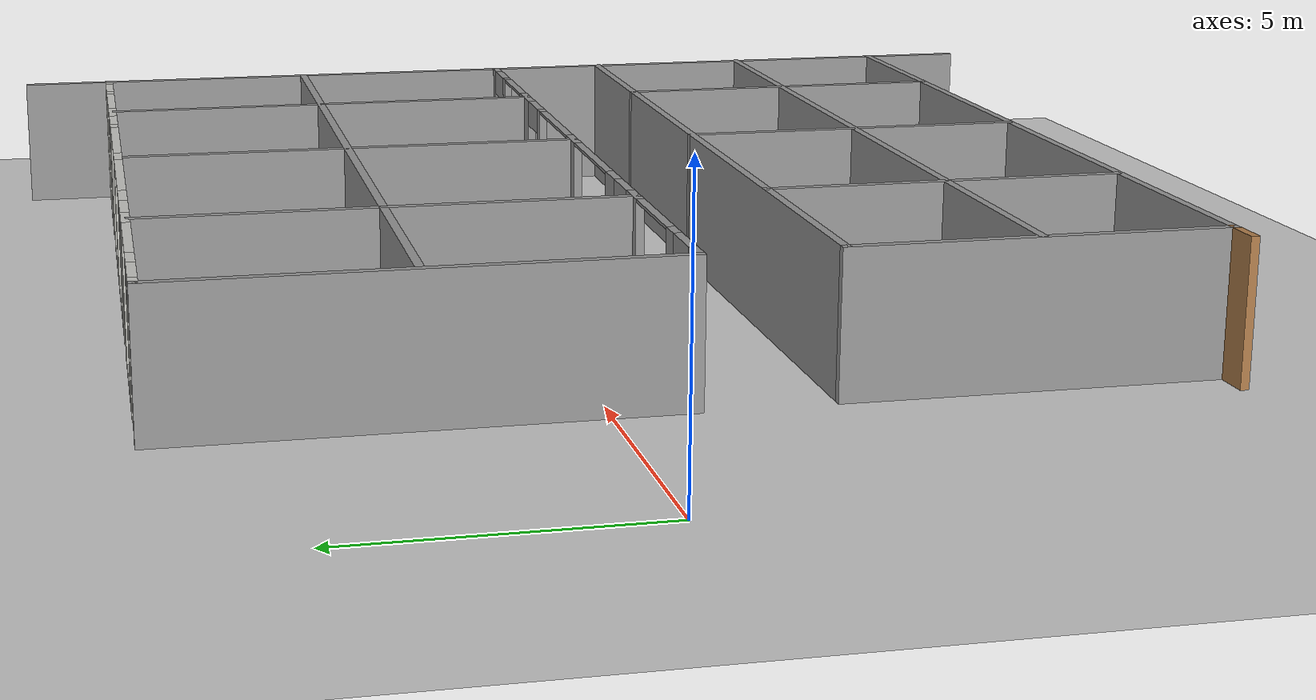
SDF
<sdf version="1.7">
 <world name="default">
  <model name="ground_plane">
   <static>1</static>
   <link name="link">
    <collision name="collision">
     <geometry><plane><normal>0 0 1</normal><size>100 100</size></plane></geometry>
     <surface>
      <contact><collide_bitmask>65535</collide_bitmask></contact>
      <friction><ode><mu>100</mu><mu2>50</mu2></ode></friction>
     </surface>
    </collision>
    <visual name="visual">
     <cast_shadows>0</cast_shadows>
     <geometry><plane><normal>0 0 1</normal><size>100 100</size></plane></geometry>
     <material>
      <script><uri>file://media/materials/scripts/gazebo.material</uri><name>Gazebo/Grey</name></script>
     </material>
    </visual>
   </link>
  </model>
  <model name="SLC_B1">
   <pose>1.2539 -1.59654 0 0 -0 0</pose>
   <link name="Wall_14">
    <pose>11.8092 8.67131 0 0 -0 3.14159</pose>
    <visual name="Wall_14_Visual_0">
     <pose>-8.41077 0 1.25 0 -0 0</pose>
     <geometry><box><size>0.42846 0.15 2.5</size></box></geometry>
     <material>
      <script><uri>file://media/materials/scripts/gazebo.material</uri><name>Gazebo/CeilingTiled</name></script>
      <ambient>0.533333 0.541176 0.521569 1</ambient>
     </material>
     <meta><layer>0</layer></meta>
    </visual>
    <collision name="Wall_14_Collision_0">
     <geometry><box><size>0.42846 0.15 2.5</size></box></geometry>
     <pose>-8.41077 0 1.25 0 -0 0</pose>
    </collision>
    <visual name="Wall_14_Visual_1">
     <pose>-7.17073 0 1.25 0 -0 0</pose>
     <geometry><box><size>0.25162 0.15 2.5</size></box></geometry>
     <material>
      <script><uri>file://media/materials/scripts/gazebo.material</uri><name>Gazebo/CeilingTiled</name></script>
      <ambient>0.533333 0.541176 0.521569 1</ambient>
     </material>
     <meta><layer>0</layer></meta>
    </visual>
    <collision name="Wall_14_Collision_1">
     <geometry><box><size>0.25162 0.15 2.5</size></box></geometry>
     <pose>-7.17073 0 1.25 0 -0 0</pose>
    </collision>
    <visual name="Wall_14_Visual_2">
     <pose>-3.47416 0 1.25 0 -0 0</pose>
     <geometry><box><size>0.289232 0.15 2.5</size></box></geometry>
     <material>
      <script><uri>file://media/materials/scripts/gazebo.material</uri><name>Gazebo/CeilingTiled</name></script>
      <ambient>0.533333 0.541176 0.521569 1</ambient>
     </material>
     <meta><layer>0</layer></meta>
    </visual>
    <collision name="Wall_14_Collision_2">
     <geometry><box><size>0.289232 0.15 2.5</size></box></geometry>
     <pose>-3.47416 0 1.25 0 -0 0</pose>
    </collision>
    <visual name="Wall_14_Visual_3">
     <pose>4.41694 0 1.25 0 -0 0</pose>
     <geometry><box><size>0.712712 0.15 2.5</size></box></geometry>
     <material>
      <script><uri>file://media/materials/scripts/gazebo.material</uri><name>Gazebo/CeilingTiled</name></script>
      <ambient>0.533333 0.541176 0.521569 1</ambient>
     </material>
     <meta><layer>0</layer></meta>
    </visual>
    <collision name="Wall_14_Collision_3">
     <geometry><box><size>0.712712 0.15 2.5</size></box></geometry>
     <pose>4.41694 0 1.25 0 -0 0</pose>
    </collision>
    <visual name="Wall_14_Visual_4">
     <pose>8.44768 0 1.25 0 -0 0</pose>
     <geometry><box><size>0.354641 0.15 2.5</size></box></geometry>
     <material>
      <script><uri>file://media/materials/scripts/gazebo.material</uri><name>Gazebo/CeilingTiled</name></script>
      <ambient>0.533333 0.541176 0.521569 1</ambient>
     </material>
     <meta><layer>0</layer></meta>
    </visual>
    <collision name="Wall_14_Collision_4">
     <geometry><box><size>0.354641 0.15 2.5</size></box></geometry>
     <pose>8.44768 0 1.25 0 -0 0</pose>
    </collision>
    <visual name="Wall_14_Visual_5">
     <pose>-5.78185 0 0.075 0 -0 0</pose>
     <geometry><box><size>2.52615 0.15 0.15</size></box></geometry>
     <material>
      <script><uri>file://media/materials/scripts/gazebo.material</uri><name>Gazebo/CeilingTiled</name></script>
      <ambient>0.533333 0.541176 0.521569 1</ambient>
     </material>
     <meta><layer>0</layer></meta>
    </visual>
    <collision name="Wall_14_Collision_5">
     <geometry><box><size>2.52615 0.15 0.15</size></box></geometry>
     <pose>-5.78185 0 0.075 0 -0 0</pose>
    </collision>
    <visual name="Wall_14_Visual_6">
     <pose>-0.084477 0 0.075 0 -0 0</pose>
     <geometry><box><size>6.49013 0.15 0.15</size></box></geometry>
     <material>
      <script><uri>file://media/materials/scripts/gazebo.material</uri><name>Gazebo/CeilingTiled</name></script>
      <ambient>0.533333 0.541176 0.521569 1</ambient>
     </material>
     <meta><layer>0</layer></meta>
    </visual>
    <collision name="Wall_14_Collision_6">
     <geometry><box><size>6.49013 0.15 0.15</size></box></geometry>
     <pose>-0.084477 0 0.075 0 -0 0</pose>
    </collision>
    <visual name="Wall_14_Visual_7">
     <pose>6.07183 0 0.075 0 -0 0</pose>
     <geometry><box><size>2.59706 0.15 0.15</size></box></geometry>
     <material>
      <script><uri>file://media/materials/scripts/gazebo.material</uri><name>Gazebo/CeilingTiled</name></script>
      <ambient>0.533333 0.541176 0.521569 1</ambient>
     </material>
     <meta><layer>0</layer></meta>
    </visual>
    <collision name="Wall_14_Collision_7">
     <geometry><box><size>2.59706 0.15 0.15</size></box></geometry>
     <pose>6.07183 0 0.075 0 -0 0</pose>
    </collision>
    <visual name="Wall_14_Visual_8">
     <pose>-4.95685 0 1.325 0 -0 0</pose>
     <geometry><box><size>0.876146 0.15 2.35</size></box></geometry>
     <material>
      <script><uri>file://media/materials/scripts/gazebo.material</uri><name>Gazebo/CeilingTiled</name></script>
      <ambient>0.533333 0.541176 0.521569 1</ambient>
     </material>
     <meta><layer>0</layer></meta>
    </visual>
    <collision name="Wall_14_Collision_8">
     <geometry><box><size>0.876146 0.15 2.35</size></box></geometry>
     <pose>-4.95685 0 1.325 0 -0 0</pose>
    </collision>
    <visual name="Wall_14_Visual_9">
     <pose>-4.95685 0 1.325 0 -0 0</pose>
     <geometry><box><size>0.876146 0.15 2.35</size></box></geometry>
     <material>
      <script><uri>file://media/materials/scripts/gazebo.material</uri><name>Gazebo/CeilingTiled</name></script>
      <ambient>0.533333 0.541176 0.521569 1</ambient>
     </material>
     <meta><layer>0</layer></meta>
    </visual>
    <collision name="Wall_14_Collision_9">
     <geometry><box><size>0.876146 0.15 2.35</size></box></geometry>
     <pose>-4.95685 0 1.325 0 -0 0</pose>
    </collision>
    <visual name="Wall_14_Visual_10">
     <pose>-0.525878 0 1.325 0 -0 0</pose>
     <geometry><box><size>0.607328 0.15 2.35</size></box></geometry>
     <material>
      <script><uri>file://media/materials/scripts/gazebo.material</uri><name>Gazebo/CeilingTiled</name></script>
      <ambient>0.533333 0.541176 0.521569 1</ambient>
     </material>
     <meta><layer>0</layer></meta>
    </visual>
    <collision name="Wall_14_Collision_10">
     <geometry><box><size>0.607328 0.15 2.35</size></box></geometry>
     <pose>-0.525878 0 1.325 0 -0 0</pose>
    </collision>
    <visual name="Wall_14_Visual_11">
     <pose>2.76919 0 1.325 0 -0 0</pose>
     <geometry><box><size>0.782801 0.15 2.35</size></box></geometry>
     <material>
      <script><uri>file://media/materials/scripts/gazebo.material</uri><name>Gazebo/CeilingTiled</name></script>
      <ambient>0.533333 0.541176 0.521569 1</ambient>
     </material>
     <meta><layer>0</layer></meta>
    </visual>
    <collision name="Wall_14_Collision_11">
     <geometry><box><size>0.782801 0.15 2.35</size></box></geometry>
     <pose>2.76919 0 1.325 0 -0 0</pose>
    </collision>
    <visual name="Wall_14_Visual_12">
     <pose>2.76919 0 1.325 0 -0 0</pose>
     <geometry><box><size>0.782801 0.15 2.35</size></box></geometry>
     <material>
      <script><uri>file://media/materials/scripts/gazebo.material</uri><name>Gazebo/CeilingTiled</name></script>
      <ambient>0.533333 0.541176 0.521569 1</ambient>
     </material>
     <meta><layer>0</layer></meta>
    </visual>
    <collision name="Wall_14_Collision_12">
     <geometry><box><size>0.782801 0.15 2.35</size></box></geometry>
     <pose>2.76919 0 1.325 0 -0 0</pose>
    </collision>
    <visual name="Wall_14_Visual_13">
     <pose>7.07183 0 1.325 0 -0 0</pose>
     <geometry><box><size>0.597059 0.15 2.35</size></box></geometry>
     <material>
      <script><uri>file://media/materials/scripts/gazebo.material</uri><name>Gazebo/CeilingTiled</name></script>
      <ambient>0.533333 0.541176 0.521569 1</ambient>
     </material>
     <meta><layer>0</layer></meta>
    </visual>
    <collision name="Wall_14_Collision_13">
     <geometry><box><size>0.597059 0.15 2.35</size></box></geometry>
     <pose>7.07183 0 1.325 0 -0 0</pose>
    </collision>
    <visual name="Wall_14_Visual_14">
     <pose>-7.74654 0 2.25 0 -0 0</pose>
     <geometry><box><size>0.9 0.15 0.5</size></box></geometry>
     <material>
      <script><uri>file://media/materials/scripts/gazebo.material</uri><name>Gazebo/CeilingTiled</name></script>
      <ambient>0.533333 0.541176 0.521569 1</ambient>
     </material>
     <meta><layer>0</layer></meta>
    </visual>
    <collision name="Wall_14_Collision_14">
     <geometry><box><size>0.9 0.15 0.5</size></box></geometry>
     <pose>-7.74654 0 2.25 0 -0 0</pose>
    </collision>
    <visual name="Wall_14_Visual_15">
     <pose>-4.06877 0 2.25 0 -0 0</pose>
     <geometry><box><size>0.9 0.15 0.5</size></box></geometry>
     <material>
      <script><uri>file://media/materials/scripts/gazebo.material</uri><name>Gazebo/CeilingTiled</name></script>
      <ambient>0.533333 0.541176 0.521569 1</ambient>
     </material>
     <meta><layer>0</layer></meta>
    </visual>
    <collision name="Wall_14_Collision_15">
     <geometry><box><size>0.9 0.15 0.5</size></box></geometry>
     <pose>-4.06877 0 2.25 0 -0 0</pose>
    </collision>
    <visual name="Wall_14_Visual_16">
     <pose>-4.06877 0 2.25 0 -0 0</pose>
     <geometry><box><size>0.9 0.15 0.5</size></box></geometry>
     <material>
      <script><uri>file://media/materials/scripts/gazebo.material</uri><name>Gazebo/CeilingTiled</name></script>
      <ambient>0.533333 0.541176 0.521569 1</ambient>
     </material>
     <meta><layer>0</layer></meta>
    </visual>
    <collision name="Wall_14_Collision_16">
     <geometry><box><size>0.9 0.15 0.5</size></box></geometry>
     <pose>-4.06877 0 2.25 0 -0 0</pose>
    </collision>
    <visual name="Wall_14_Visual_17">
     <pose>3.61059 0 2.25 0 -0 0</pose>
     <geometry><box><size>0.9 0.15 0.5</size></box></geometry>
     <material>
      <script><uri>file://media/materials/scripts/gazebo.material</uri><name>Gazebo/CeilingTiled</name></script>
      <ambient>0.533333 0.541176 0.521569 1</ambient>
     </material>
     <meta><layer>0</layer></meta>
    </visual>
    <collision name="Wall_14_Collision_17">
     <geometry><box><size>0.9 0.15 0.5</size></box></geometry>
     <pose>3.61059 0 2.25 0 -0 0</pose>
    </collision>
    <visual name="Wall_14_Visual_18">
     <pose>3.61059 0 2.25 0 -0 0</pose>
     <geometry><box><size>0.9 0.15 0.5</size></box></geometry>
     <material>
      <script><uri>file://media/materials/scripts/gazebo.material</uri><name>Gazebo/CeilingTiled</name></script>
      <ambient>0.533333 0.541176 0.521569 1</ambient>
     </material>
     <meta><layer>0</layer></meta>
    </visual>
    <collision name="Wall_14_Collision_18">
     <geometry><box><size>0.9 0.15 0.5</size></box></geometry>
     <pose>3.61059 0 2.25 0 -0 0</pose>
    </collision>
    <visual name="Wall_14_Visual_19">
     <pose>7.82036 0 2.25 0 -0 0</pose>
     <geometry><box><size>0.9 0.15 0.5</size></box></geometry>
     <material>
      <script><uri>file://media/materials/scripts/gazebo.material</uri><name>Gazebo/CeilingTiled</name></script>
      <ambient>0.533333 0.541176 0.521569 1</ambient>
     </material>
     <meta><layer>0</layer></meta>
    </visual>
    <collision name="Wall_14_Collision_19">
     <geometry><box><size>0.9 0.15 0.5</size></box></geometry>
     <pose>7.82036 0 2.25 0 -0 0</pose>
    </collision>
    <visual name="Wall_14_Visual_20">
     <pose>-6.21992 0 2.475 0 -0 0</pose>
     <geometry><box><size>1.65 0.15 0.05</size></box></geometry>
     <material>
      <script><uri>file://media/materials/scripts/gazebo.material</uri><name>Gazebo/CeilingTiled</name></script>
      <ambient>0.533333 0.541176 0.521569 1</ambient>
     </material>
     <meta><layer>0</layer></meta>
    </visual>
    <collision name="Wall_14_Collision_20">
     <geometry><box><size>1.65 0.15 0.05</size></box></geometry>
     <pose>-6.21992 0 2.475 0 -0 0</pose>
    </collision>
    <visual name="Wall_14_Visual_21">
     <pose>-2.07954 0 2.475 0 -0 0</pose>
     <geometry><box><size>2.5 0.15 0.05</size></box></geometry>
     <material>
      <script><uri>file://media/materials/scripts/gazebo.material</uri><name>Gazebo/CeilingTiled</name></script>
      <ambient>0.533333 0.541176 0.521569 1</ambient>
     </material>
     <meta><layer>0</layer></meta>
    </visual>
    <collision name="Wall_14_Collision_21">
     <geometry><box><size>2.5 0.15 0.05</size></box></geometry>
     <pose>-2.07954 0 2.475 0 -0 0</pose>
    </collision>
    <visual name="Wall_14_Visual_22">
     <pose>5.7733 0 2.475 0 -0 0</pose>
     <geometry><box><size>2 0.15 0.05</size></box></geometry>
     <material>
      <script><uri>file://media/materials/scripts/gazebo.material</uri><name>Gazebo/CeilingTiled</name></script>
      <ambient>0.533333 0.541176 0.521569 1</ambient>
     </material>
     <meta><layer>0</layer></meta>
    </visual>
    <collision name="Wall_14_Collision_22">
     <geometry><box><size>2 0.15 0.05</size></box></geometry>
     <pose>5.7733 0 2.475 0 -0 0</pose>
    </collision>
    <visual name="Wall_14_Visual_23">
     <pose>1.07779 0 2.475 0 -0 0</pose>
     <geometry><box><size>2.6 0.15 0.05</size></box></geometry>
     <material>
      <script><uri>file://media/materials/scripts/gazebo.material</uri><name>Gazebo/CeilingTiled</name></script>
      <ambient>0.533333 0.541176 0.521569 1</ambient>
     </material>
     <meta><layer>0</layer></meta>
    </visual>
    <collision name="Wall_14_Collision_23">
     <geometry><box><size>2.6 0.15 0.05</size></box></geometry>
     <pose>1.07779 0 2.475 0 -0 0</pose>
    </collision>
   </link>
   <link name="Wall_15">
    <collision name="Wall_15_Collision">
     <geometry><box><size>8.56942 0.15 2.5</size></box></geometry>
     <pose>0 0 1.25 0 -0 0</pose>
    </collision>
    <visual name="Wall_15_Visual">
     <pose>0 0 1.25 0 -0 0</pose>
     <geometry><box><size>8.56942 0.15 2.5</size></box></geometry>
     <material>
      <script><uri>file://media/materials/scripts/gazebo.material</uri><name>Gazebo/Grey</name></script>
      <ambient>0.533333 0.541176 0.521569 1</ambient>
     </material>
     <meta><layer>0</layer></meta>
    </visual>
    <pose>3.23606 4.46162 0 0 -0 -1.5708</pose>
   </link>
   <link name="Wall_16">
    <pose>11.7861 0.25192 0 0 -0 0</pose>
    <visual name="Wall_16_Visual_0">
     <pose>-8.35766 0 1.25 0 -0 0</pose>
     <geometry><box><size>0.534678 0.15 2.5</size></box></geometry>
     <material>
      <script><uri>file://media/materials/scripts/gazebo.material</uri><name>Gazebo/Grey</name></script>
      <ambient>0.533333 0.541176 0.521569 1</ambient>
     </material>
     <meta><layer>0</layer></meta>
    </visual>
    <collision name="Wall_16_Collision_0">
     <geometry><box><size>0.534678 0.15 2.5</size></box></geometry>
     <pose>-8.35766 0 1.25 0 -0 0</pose>
    </collision>
    <visual name="Wall_16_Visual_1">
     <pose>-6.97321 0 1.25 0 -0 0</pose>
     <geometry><box><size>0.434218 0.15 2.5</size></box></geometry>
     <material>
      <script><uri>file://media/materials/scripts/gazebo.material</uri><name>Gazebo/Grey</name></script>
      <ambient>0.533333 0.541176 0.521569 1</ambient>
     </material>
     <meta><layer>0</layer></meta>
    </visual>
    <collision name="Wall_16_Collision_1">
     <geometry><box><size>0.434218 0.15 2.5</size></box></geometry>
     <pose>-6.97321 0 1.25 0 -0 0</pose>
    </collision>
    <visual name="Wall_16_Visual_2">
     <pose>-2.81975 0 1.25 0 -0 0</pose>
     <geometry><box><size>0.645982 0.15 2.5</size></box></geometry>
     <material>
      <script><uri>file://media/materials/scripts/gazebo.material</uri><name>Gazebo/Grey</name></script>
      <ambient>0.533333 0.541176 0.521569 1</ambient>
     </material>
     <meta><layer>0</layer></meta>
    </visual>
    <collision name="Wall_16_Collision_2">
     <geometry><box><size>0.645982 0.15 2.5</size></box></geometry>
     <pose>-2.81975 0 1.25 0 -0 0</pose>
    </collision>
    <visual name="Wall_16_Visual_3">
     <pose>4.96072 0 1.25 0 -0 0</pose>
     <geometry><box><size>0.947074 0.15 2.5</size></box></geometry>
     <material>
      <script><uri>file://media/materials/scripts/gazebo.material</uri><name>Gazebo/Grey</name></script>
      <ambient>0.533333 0.541176 0.521569 1</ambient>
     </material>
     <meta><layer>0</layer></meta>
    </visual>
    <collision name="Wall_16_Collision_3">
     <geometry><box><size>0.947074 0.15 2.5</size></box></geometry>
     <pose>4.96072 0 1.25 0 -0 0</pose>
    </collision>
    <visual name="Wall_16_Visual_4">
     <pose>8.41705 0 1.25 0 -0 0</pose>
     <geometry><box><size>0.415906 0.15 2.5</size></box></geometry>
     <material>
      <script><uri>file://media/materials/scripts/gazebo.material</uri><name>Gazebo/Grey</name></script>
      <ambient>0.533333 0.541176 0.521569 1</ambient>
     </material>
     <meta><layer>0</layer></meta>
    </visual>
    <collision name="Wall_16_Collision_4">
     <geometry><box><size>0.415906 0.15 2.5</size></box></geometry>
     <pose>8.41705 0 1.25 0 -0 0</pose>
    </collision>
    <visual name="Wall_16_Visual_5">
     <pose>-5.39942 0 0.075 0 -0 0</pose>
     <geometry><box><size>2.71336 0.15 0.15</size></box></geometry>
     <material>
      <script><uri>file://media/materials/scripts/gazebo.material</uri><name>Gazebo/Grey</name></script>
      <ambient>0.533333 0.541176 0.521569 1</ambient>
     </material>
     <meta><layer>0</layer></meta>
    </visual>
    <collision name="Wall_16_Collision_5">
     <geometry><box><size>2.71336 0.15 0.15</size></box></geometry>
     <pose>-5.39942 0 0.075 0 -0 0</pose>
    </collision>
    <visual name="Wall_16_Visual_6">
     <pose>0.54521 0 0.075 0 -0 0</pose>
     <geometry><box><size>6.08394 0.15 0.15</size></box></geometry>
     <material>
      <script><uri>file://media/materials/scripts/gazebo.material</uri><name>Gazebo/Grey</name></script>
      <ambient>0.533333 0.541176 0.521569 1</ambient>
     </material>
     <meta><layer>0</layer></meta>
    </visual>
    <collision name="Wall_16_Collision_6">
     <geometry><box><size>6.08394 0.15 0.15</size></box></geometry>
     <pose>0.54521 0 0.075 0 -0 0</pose>
    </collision>
    <visual name="Wall_16_Visual_7">
     <pose>6.37167 0 0.075 0 -0 0</pose>
     <geometry><box><size>1.87484 0.15 0.15</size></box></geometry>
     <material>
      <script><uri>file://media/materials/scripts/gazebo.material</uri><name>Gazebo/Grey</name></script>
      <ambient>0.533333 0.541176 0.521569 1</ambient>
     </material>
     <meta><layer>0</layer></meta>
    </visual>
    <collision name="Wall_16_Collision_7">
     <geometry><box><size>1.87484 0.15 0.15</size></box></geometry>
     <pose>6.37167 0 0.075 0 -0 0</pose>
    </collision>
    <visual name="Wall_16_Visual_8">
     <pose>-4.39942 0 1.325 0 -0 0</pose>
     <geometry><box><size>0.713362 0.15 2.35</size></box></geometry>
     <material>
      <script><uri>file://media/materials/scripts/gazebo.material</uri><name>Gazebo/Grey</name></script>
      <ambient>0.533333 0.541176 0.521569 1</ambient>
     </material>
     <meta><layer>0</layer></meta>
    </visual>
    <collision name="Wall_16_Collision_8">
     <geometry><box><size>0.713362 0.15 2.35</size></box></geometry>
     <pose>-4.39942 0 1.325 0 -0 0</pose>
    </collision>
    <visual name="Wall_16_Visual_9">
     <pose>-4.39942 0 1.325 0 -0 0</pose>
     <geometry><box><size>0.713362 0.15 2.35</size></box></geometry>
     <material>
      <script><uri>file://media/materials/scripts/gazebo.material</uri><name>Gazebo/Grey</name></script>
      <ambient>0.533333 0.541176 0.521569 1</ambient>
     </material>
     <meta><layer>0</layer></meta>
    </visual>
    <collision name="Wall_16_Collision_9">
     <geometry><box><size>0.713362 0.15 2.35</size></box></geometry>
     <pose>-4.39942 0 1.325 0 -0 0</pose>
    </collision>
    <visual name="Wall_16_Visual_10">
     <pose>0.468208 0 1.325 0 -0 0</pose>
     <geometry><box><size>0.729936 0.15 2.35</size></box></geometry>
     <material>
      <script><uri>file://media/materials/scripts/gazebo.material</uri><name>Gazebo/Grey</name></script>
      <ambient>0.533333 0.541176 0.521569 1</ambient>
     </material>
     <meta><layer>0</layer></meta>
    </visual>
    <collision name="Wall_16_Collision_10">
     <geometry><box><size>0.729936 0.15 2.35</size></box></geometry>
     <pose>0.468208 0 1.325 0 -0 0</pose>
    </collision>
    <visual name="Wall_16_Visual_11">
     <pose>3.46018 0 1.325 0 -0 0</pose>
     <geometry><box><size>0.254004 0.15 2.35</size></box></geometry>
     <material>
      <script><uri>file://media/materials/scripts/gazebo.material</uri><name>Gazebo/Grey</name></script>
      <ambient>0.533333 0.541176 0.521569 1</ambient>
     </material>
     <meta><layer>0</layer></meta>
    </visual>
    <collision name="Wall_16_Collision_11">
     <geometry><box><size>0.254004 0.15 2.35</size></box></geometry>
     <pose>3.46018 0 1.325 0 -0 0</pose>
    </collision>
    <visual name="Wall_16_Visual_12">
     <pose>3.46018 0 1.325 0 -0 0</pose>
     <geometry><box><size>0.254004 0.15 2.35</size></box></geometry>
     <material>
      <script><uri>file://media/materials/scripts/gazebo.material</uri><name>Gazebo/Grey</name></script>
      <ambient>0.533333 0.541176 0.521569 1</ambient>
     </material>
     <meta><layer>0</layer></meta>
    </visual>
    <collision name="Wall_16_Collision_12">
     <geometry><box><size>0.254004 0.15 2.35</size></box></geometry>
     <pose>3.46018 0 1.325 0 -0 0</pose>
    </collision>
    <visual name="Wall_16_Visual_13">
     <pose>7.20017 0 1.325 0 -0 0</pose>
     <geometry><box><size>0.217839 0.15 2.35</size></box></geometry>
     <material>
      <script><uri>file://media/materials/scripts/gazebo.material</uri><name>Gazebo/Grey</name></script>
      <ambient>0.533333 0.541176 0.521569 1</ambient>
     </material>
     <meta><layer>0</layer></meta>
    </visual>
    <collision name="Wall_16_Collision_13">
     <geometry><box><size>0.217839 0.15 2.35</size></box></geometry>
     <pose>7.20017 0 1.325 0 -0 0</pose>
    </collision>
    <visual name="Wall_16_Visual_14">
     <pose>-7.64032 0 2.25 0 -0 0</pose>
     <geometry><box><size>0.9 0.15 0.5</size></box></geometry>
     <material>
      <script><uri>file://media/materials/scripts/gazebo.material</uri><name>Gazebo/Grey</name></script>
      <ambient>0.533333 0.541176 0.521569 1</ambient>
     </material>
     <meta><layer>0</layer></meta>
    </visual>
    <collision name="Wall_16_Collision_14">
     <geometry><box><size>0.9 0.15 0.5</size></box></geometry>
     <pose>-7.64032 0 2.25 0 -0 0</pose>
    </collision>
    <visual name="Wall_16_Visual_15">
     <pose>-3.59274 0 2.25 0 -0 0</pose>
     <geometry><box><size>0.9 0.15 0.5</size></box></geometry>
     <material>
      <script><uri>file://media/materials/scripts/gazebo.material</uri><name>Gazebo/Grey</name></script>
      <ambient>0.533333 0.541176 0.521569 1</ambient>
     </material>
     <meta><layer>0</layer></meta>
    </visual>
    <collision name="Wall_16_Collision_15">
     <geometry><box><size>0.9 0.15 0.5</size></box></geometry>
     <pose>-3.59274 0 2.25 0 -0 0</pose>
    </collision>
    <visual name="Wall_16_Visual_16">
     <pose>-3.59274 0 2.25 0 -0 0</pose>
     <geometry><box><size>0.9 0.15 0.5</size></box></geometry>
     <material>
      <script><uri>file://media/materials/scripts/gazebo.material</uri><name>Gazebo/Grey</name></script>
      <ambient>0.533333 0.541176 0.521569 1</ambient>
     </material>
     <meta><layer>0</layer></meta>
    </visual>
    <collision name="Wall_16_Collision_16">
     <geometry><box><size>0.9 0.15 0.5</size></box></geometry>
     <pose>-3.59274 0 2.25 0 -0 0</pose>
    </collision>
    <visual name="Wall_16_Visual_17">
     <pose>4.03718 0 2.25 0 -0 0</pose>
     <geometry><box><size>0.9 0.15 0.5</size></box></geometry>
     <material>
      <script><uri>file://media/materials/scripts/gazebo.material</uri><name>Gazebo/Grey</name></script>
      <ambient>0.533333 0.541176 0.521569 1</ambient>
     </material>
     <meta><layer>0</layer></meta>
    </visual>
    <collision name="Wall_16_Collision_17">
     <geometry><box><size>0.9 0.15 0.5</size></box></geometry>
     <pose>4.03718 0 2.25 0 -0 0</pose>
    </collision>
    <visual name="Wall_16_Visual_18">
     <pose>4.03718 0 2.25 0 -0 0</pose>
     <geometry><box><size>0.9 0.15 0.5</size></box></geometry>
     <material>
      <script><uri>file://media/materials/scripts/gazebo.material</uri><name>Gazebo/Grey</name></script>
      <ambient>0.533333 0.541176 0.521569 1</ambient>
     </material>
     <meta><layer>0</layer></meta>
    </visual>
    <collision name="Wall_16_Collision_18">
     <geometry><box><size>0.9 0.15 0.5</size></box></geometry>
     <pose>4.03718 0 2.25 0 -0 0</pose>
    </collision>
    <visual name="Wall_16_Visual_19">
     <pose>7.75909 0 2.25 0 -0 0</pose>
     <geometry><box><size>0.9 0.15 0.5</size></box></geometry>
     <material>
      <script><uri>file://media/materials/scripts/gazebo.material</uri><name>Gazebo/Grey</name></script>
      <ambient>0.533333 0.541176 0.521569 1</ambient>
     </material>
     <meta><layer>0</layer></meta>
    </visual>
    <collision name="Wall_16_Collision_19">
     <geometry><box><size>0.9 0.15 0.5</size></box></geometry>
     <pose>7.75909 0 2.25 0 -0 0</pose>
    </collision>
    <visual name="Wall_16_Visual_20">
     <pose>-5.7561 0 2.475 0 -0 0</pose>
     <geometry><box><size>2 0.15 0.05</size></box></geometry>
     <material>
      <script><uri>file://media/materials/scripts/gazebo.material</uri><name>Gazebo/Grey</name></script>
      <ambient>0.533333 0.541176 0.521569 1</ambient>
     </material>
     <meta><layer>0</layer></meta>
    </visual>
    <collision name="Wall_16_Collision_20">
     <geometry><box><size>2 0.15 0.05</size></box></geometry>
     <pose>-5.7561 0 2.475 0 -0 0</pose>
    </collision>
    <visual name="Wall_16_Visual_21">
     <pose>-1.19676 0 2.475 0 -0 0</pose>
     <geometry><box><size>2.6 0.15 0.05</size></box></geometry>
     <material>
      <script><uri>file://media/materials/scripts/gazebo.material</uri><name>Gazebo/Grey</name></script>
      <ambient>0.533333 0.541176 0.521569 1</ambient>
     </material>
     <meta><layer>0</layer></meta>
    </visual>
    <collision name="Wall_16_Collision_21">
     <geometry><box><size>2.6 0.15 0.05</size></box></geometry>
     <pose>-1.19676 0 2.475 0 -0 0</pose>
    </collision>
    <visual name="Wall_16_Visual_22">
     <pose>6.26276 0 2.475 0 -0 0</pose>
     <geometry><box><size>1.657 0.15 0.05</size></box></geometry>
     <material>
      <script><uri>file://media/materials/scripts/gazebo.material</uri><name>Gazebo/Grey</name></script>
      <ambient>0.533333 0.541176 0.521569 1</ambient>
     </material>
     <meta><layer>0</layer></meta>
    </visual>
    <collision name="Wall_16_Collision_22">
     <geometry><box><size>1.657 0.15 0.05</size></box></geometry>
     <pose>6.26276 0 2.475 0 -0 0</pose>
    </collision>
    <visual name="Wall_16_Visual_23">
     <pose>2.08318 0 2.475 0 -0 0</pose>
     <geometry><box><size>2.5 0.15 0.05</size></box></geometry>
     <material>
      <script><uri>file://media/materials/scripts/gazebo.material</uri><name>Gazebo/Grey</name></script>
      <ambient>0.533333 0.541176 0.521569 1</ambient>
     </material>
     <meta><layer>0</layer></meta>
    </visual>
    <collision name="Wall_16_Collision_23">
     <geometry><box><size>2.5 0.15 0.05</size></box></geometry>
     <pose>2.08318 0 2.475 0 -0 0</pose>
    </collision>
   </link>
   <link name="Wall_18">
    <collision name="Wall_18_Collision">
     <geometry><box><size>17.25 0.15 2.5</size></box></geometry>
     <pose>0 0 1.25 0 -0 0</pose>
    </collision>
    <visual name="Wall_18_Visual">
     <pose>0 0 1.25 0 -0 0</pose>
     <geometry><box><size>17.25 0.15 2.5</size></box></geometry>
     <material>
      <script><uri>file://media/materials/scripts/gazebo.material</uri><name>Gazebo/Grey</name></script>
      <ambient>0.533333 0.541176 0.521569 1</ambient>
     </material>
     <meta><layer>0</layer></meta>
    </visual>
    <pose>11.8118 4.50781 0 0 -0 0</pose>
   </link>
   <link name="Wall_23">
    <collision name="Wall_23_Collision">
     <geometry><box><size>8.5 0.15 2.5</size></box></geometry>
     <pose>0 0 1.25 0 -0 0</pose>
    </collision>
    <visual name="Wall_23_Visual">
     <pose>0 0 1.25 0 -0 0</pose>
     <geometry><box><size>8.5 0.15 2.5</size></box></geometry>
     <material>
      <script><uri>file://media/materials/scripts/gazebo.material</uri><name>Gazebo/Grey</name></script>
      <ambient>0.533333 0.541176 0.521569 1</ambient>
     </material>
     <meta><layer>0</layer></meta>
    </visual>
    <pose>7.30937 4.42692 0 0 -0 -1.5708</pose>
   </link>
   <link name="Wall_29">
    <collision name="Wall_29_Collision">
     <geometry><box><size>8.5 0.15 2.5</size></box></geometry>
     <pose>0 0 1.25 0 -0 0</pose>
    </collision>
    <visual name="Wall_29_Visual">
     <pose>0 0 1.25 0 -0 0</pose>
     <geometry><box><size>8.5 0.15 2.5</size></box></geometry>
     <material>
      <script><uri>file://media/materials/scripts/gazebo.material</uri><name>Gazebo/Grey</name></script>
      <ambient>0.533333 0.541176 0.521569 1</ambient>
     </material>
     <meta><layer>0</layer></meta>
    </visual>
    <pose>12.2409 4.42692 0 0 -0 -1.5708</pose>
   </link>
   <link name="Wall_33">
    <collision name="Wall_33_Collision">
     <geometry><box><size>8.5 0.15 2.5</size></box></geometry>
     <pose>0 0 1.25 0 -0 0</pose>
    </collision>
    <visual name="Wall_33_Visual">
     <pose>0 0 1.25 0 -0 0</pose>
     <geometry><box><size>8.5 0.15 2.5</size></box></geometry>
     <material>
      <script><uri>file://media/materials/scripts/gazebo.material</uri><name>Gazebo/Grey</name></script>
      <ambient>0.533333 0.541176 0.521569 1</ambient>
     </material>
     <meta><layer>0</layer></meta>
    </visual>
    <pose>16.8002 4.42692 0 0 -0 -1.5708</pose>
   </link>
   <link name="Wall_39">
    <collision name="Wall_39_Collision">
     <geometry><box><size>17.25 0.15 2.5</size></box></geometry>
     <pose>0 0 1.25 0 -0 0</pose>
    </collision>
    <visual name="Wall_39_Visual">
     <pose>0 0 1.25 0 -0 0</pose>
     <geometry><box><size>17.25 0.15 2.5</size></box></geometry>
     <material>
      <script><uri>file://media/materials/scripts/gazebo.material</uri><name>Gazebo/Grey</name></script>
      <ambient>0.533333 0.541176 0.521569 1</ambient>
     </material>
     <meta><layer>0</layer></meta>
    </visual>
    <pose>11.7968 -2.04592 0 0 -0 3.14159</pose>
   </link>
   <link name="Wall_40">
    <collision name="Wall_40_Collision">
     <geometry><box><size>6.57614 0.15 2.5</size></box></geometry>
     <pose>0 0 1.25 0 -0 0</pose>
    </collision>
    <visual name="Wall_40_Visual">
     <pose>0 0 1.25 0 -0 0</pose>
     <geometry><box><size>6.57614 0.15 2.5</size></box></geometry>
     <material>
      <script><uri>file://media/materials/scripts/gazebo.material</uri><name>Gazebo/Grey</name></script>
      <ambient>0.533333 0.541176 0.521569 1</ambient>
     </material>
     <meta><layer>0</layer></meta>
    </visual>
    <pose>3.24677 -5.25874 0 0 -0 -1.5708</pose>
   </link>
   <link name="Wall_41">
    <collision name="Wall_41_Collision">
     <geometry><box><size>17.2502 0.15 2.5</size></box></geometry>
     <pose>0 0 1.25 0 -0 0</pose>
    </collision>
    <visual name="Wall_41_Visual">
     <pose>0 0 1.25 0 -0 0</pose>
     <geometry><box><size>17.2502 0.15 2.5</size></box></geometry>
     <material>
      <script><uri>file://media/materials/scripts/gazebo.material</uri><name>Gazebo/Grey</name></script>
      <ambient>1 1 1 1</ambient>
     </material>
     <meta><layer>0</layer></meta>
    </visual>
    <pose>11.7968 -8.43374 0 0 -0 0.004423</pose>
   </link>
   <link name="Wall_43">
    <collision name="Wall_43_Collision">
     <geometry><box><size>17.25 0.15 2.5</size></box></geometry>
     <pose>0 0 1.25 0 -0 0</pose>
    </collision>
    <visual name="Wall_43_Visual">
     <pose>0 0 1.25 0 -0 0</pose>
     <geometry><box><size>17.25 0.15 2.5</size></box></geometry>
     <material>
      <script><uri>file://media/materials/scripts/gazebo.material</uri><name>Gazebo/Grey</name></script>
      <ambient>0.533333 0.541176 0.521569 1</ambient>
     </material>
     <meta><layer>0</layer></meta>
    </visual>
    <pose>11.8225 -5.25607 0 0 -0 0</pose>
   </link>
   <link name="Wall_45">
    <collision name="Wall_45_Collision">
     <geometry><box><size>6.5 0.15 2.5</size></box></geometry>
     <pose>0 0 1.25 0 -0 0</pose>
    </collision>
    <visual name="Wall_45_Visual">
     <pose>0 0 1.25 0 -0 0</pose>
     <geometry><box><size>6.5 0.15 2.5</size></box></geometry>
     <material>
      <script><uri>file://media/materials/scripts/gazebo.material</uri><name>Gazebo/Grey</name></script>
      <ambient>0.533333 0.541176 0.521569 1</ambient>
     </material>
     <meta><layer>0</layer></meta>
    </visual>
    <pose>7.3666 -5.22092 0 0 -0 -1.5708</pose>
   </link>
   <link name="Wall_47">
    <collision name="Wall_47_Collision">
     <geometry><box><size>6.5 0.15 2.5</size></box></geometry>
     <pose>0 0 1.25 0 -0 0</pose>
    </collision>
    <visual name="Wall_47_Visual">
     <pose>0 0 1.25 0 -0 0</pose>
     <geometry><box><size>6.5 0.15 2.5</size></box></geometry>
     <material>
      <script><uri>file://media/materials/scripts/gazebo.material</uri><name>Gazebo/Grey</name></script>
      <ambient>0.533333 0.541176 0.521569 1</ambient>
     </material>
     <meta><layer>0</layer></meta>
    </visual>
    <pose>12.2051 -5.22092 0 0 -0 -1.5708</pose>
   </link>
   <link name="Wall_49">
    <collision name="Wall_49_Collision">
     <geometry><box><size>6.5 0.15 2.5</size></box></geometry>
     <pose>0 0 1.25 0 -0 0</pose>
    </collision>
    <visual name="Wall_49_Visual">
     <pose>0 0 1.25 0 -0 0</pose>
     <geometry><box><size>6.5 0.15 2.5</size></box></geometry>
     <material>
      <script><uri>file://media/materials/scripts/gazebo.material</uri><name>Gazebo/Grey</name></script>
      <ambient>0.533333 0.541176 0.521569 1</ambient>
     </material>
     <meta><layer>0</layer></meta>
    </visual>
    <pose>16.904 -5.22092 0 0 -0 -1.5708</pose>
   </link>
   <link name="Wall_8">
    <collision name="Wall_8_Collision">
     <geometry><box><size>20.75 0.15 2.5</size></box></geometry>
     <pose>0 0 1.25 0 -0 0</pose>
    </collision>
    <visual name="Wall_8_Visual">
     <pose>0 0 1.25 0 -0 0</pose>
     <geometry><box><size>20.75 0.15 2.5</size></box></geometry>
     <material>
      <script><uri>file://media/materials/scripts/gazebo.material</uri><name>Gazebo/Grey</name></script>
      <ambient>0.533333 0.541176 0.521569 1</ambient>
     </material>
     <meta><layer>0</layer></meta>
    </visual>
    <pose>20.3239 0.023304 0 0 -0 -1.5708</pose>
   </link>
   <link name="Wall_95">
    <collision name="Wall_95_Collision">
     <geometry><box><size>0.75 0.15 2.5</size></box></geometry>
     <pose>0 0 1.25 0 -0 0</pose>
    </collision>
    <visual name="Wall_95_Visual">
     <pose>0 0 1.25 0 -0 0</pose>
     <geometry><box><size>0.75 0.15 2.5</size></box></geometry>
     <material>
      <script><uri>file://media/materials/scripts/gazebo.material</uri><name>Gazebo/Wood</name></script>
      <ambient>1 1 1 1</ambient>
     </material>
     <meta><layer>0</layer></meta>
    </visual>
    <pose>2.94677 -8.47156 0 0 -0 0</pose>
   </link>
   <static>1</static>
  </model>
 </world>
</sdf>
